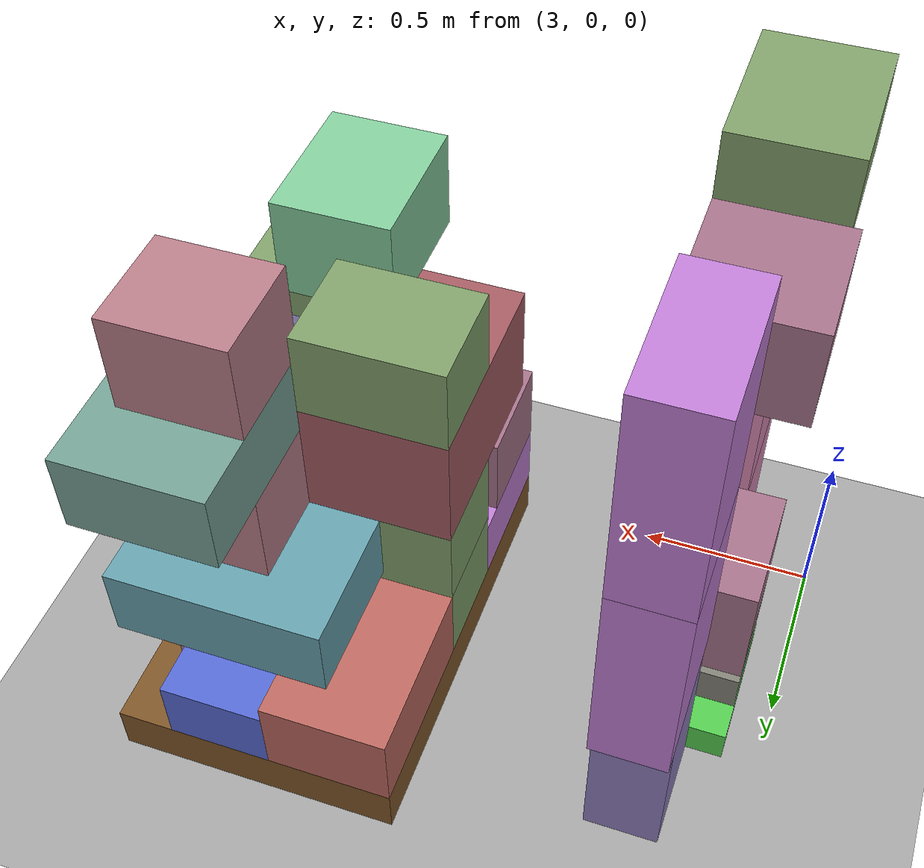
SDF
<sdf version="1.10">
 <world name="pallet_towers">
  <model name="ground_plane">
   <static>true</static>
   <link name="link">
    <collision name="collision">
     <geometry><plane><normal>0 0 1</normal><size>30 30</size></plane></geometry>
     <surface>
      <friction><ode><mu>0.55</mu><mu2>0.55</mu2></ode></friction>
      <bounce><restitution_coefficient>0</restitution_coefficient><threshold>100000</threshold></bounce>
      <contact><ode><kp>1000000</kp><kd>100</kd><max_vel>1</max_vel><min_depth>0.0005</min_depth></ode></contact>
     </surface>
    </collision>
    <visual name="visual">
     <geometry><plane><normal>0 0 1</normal><size>30 30</size></plane></geometry>
     <material><ambient>0.65 0.65 0.65 1</ambient><diffuse>0.65 0.65 0.65 1</diffuse></material>
    </visual>
   </link>
  </model>
  <model name="box_p03_0005_YOGURT_009_YOGURT">
   <static>false</static>
   <pose>3.23 0.595 0.194 0 0 0</pose>
   <link name="body">
    <inertial>
     <mass>5</mass>
     <inertia>
      <ixx>0.0675416667</ixx>
      <ixy>0</ixy>
      <ixz>0</ixz>
      <iyy>0.0323333333</iyy>
      <iyz>0</iyz>
      <izz>0.0915416667</izz>
     </inertia>
    </inertial>
    <collision name="collision">
     <geometry><box><size>0.26 0.39 0.1</size></box></geometry>
     <surface>
      <friction><ode><mu>0.55</mu><mu2>0.55</mu2></ode></friction>
      <bounce><restitution_coefficient>0</restitution_coefficient><threshold>100000</threshold></bounce>
      <contact><ode><kp>1000000</kp><kd>100</kd><max_vel>1</max_vel><min_depth>0.0005</min_depth></ode></contact>
     </surface>
    </collision>
    <visual name="visual">
     <geometry><box><size>0.26 0.39 0.1</size></box></geometry>
     <material>
      <ambient>0.329411765 0.803921569 0.31372549 1</ambient>
      <diffuse>0.329411765 0.803921569 0.31372549 1</diffuse>
      <specular>0.05 0.05 0.05 1</specular>
     </material>
    </visual>
   </link>
  </model>
  <model name="box_p03_0011_BUTTER_005_BUTTER">
   <static>false</static>
   <pose>3.22 0.58 0.409 0 0 0</pose>
   <link name="body">
    <inertial>
     <mass>10</mass>
     <inertia>
      <ixx>0.118083333</ixx>
      <ixy>0</ixy>
      <ixz>0</ixz>
      <iyy>0.0580833333</iyy>
      <iyz>0</iyz>
      <izz>0.156</izz>
     </inertia>
    </inertial>
    <collision name="collision">
     <geometry><box><size>0.24 0.36 0.11</size></box></geometry>
     <surface>
      <friction><ode><mu>0.55</mu><mu2>0.55</mu2></ode></friction>
      <bounce><restitution_coefficient>0</restitution_coefficient><threshold>100000</threshold></bounce>
      <contact><ode><kp>1000000</kp><kd>100</kd><max_vel>1</max_vel><min_depth>0.0005</min_depth></ode></contact>
     </surface>
    </collision>
    <visual name="visual">
     <geometry><box><size>0.24 0.36 0.11</size></box></geometry>
     <material>
      <ambient>0.51372549 0.509803922 0.466666667 1</ambient>
      <diffuse>0.51372549 0.509803922 0.466666667 1</diffuse>
      <specular>0.05 0.05 0.05 1</specular>
     </material>
    </visual>
   </link>
  </model>
  <model name="box_p03_0012_WINE_006_WINE">
   <static>false</static>
   <pose>3.23 0.57 0.624 0 0 0</pose>
   <link name="body">
    <inertial>
     <mass>18</mass>
     <inertia><ixx>0.327</ixx><ixy>0</ixy><ixz>0</ixz><iyy>0.255</iyy><iyz>0</iyz><izz>0.2748</izz></inertia>
    </inertial>
    <collision name="collision">
     <geometry><box><size>0.26 0.34 0.32</size></box></geometry>
     <surface>
      <friction><ode><mu>0.55</mu><mu2>0.55</mu2></ode></friction>
      <bounce><restitution_coefficient>0</restitution_coefficient><threshold>100000</threshold></bounce>
      <contact><ode><kp>1000000</kp><kd>100</kd><max_vel>1</max_vel><min_depth>0.0005</min_depth></ode></contact>
     </surface>
    </collision>
    <visual name="visual">
     <geometry><box><size>0.26 0.34 0.32</size></box></geometry>
     <material>
      <ambient>0.654901961 0.450980392 0.541176471 1</ambient>
      <diffuse>0.654901961 0.450980392 0.541176471 1</diffuse>
      <specular>0.05 0.05 0.05 1</specular>
     </material>
    </visual>
   </link>
  </model>
  <model name="box_p03_0013_POTATO_004_POTATO">
   <static>false</static>
   <pose>3.3 0.2 0.444 0 0 0</pose>
   <link name="body">
    <inertial>
     <mass>25</mass>
     <inertia>
      <ixx>1.08333333</ixx>
      <ixy>0</ixy>
      <ixz>0</ixz>
      <iyy>0.833333333</iyy>
      <iyz>0</iyz>
      <izz>0.416666667</izz>
     </inertia>
    </inertial>
    <collision name="collision">
     <geometry><box><size>0.2 0.4 0.6</size></box></geometry>
     <surface>
      <friction><ode><mu>0.55</mu><mu2>0.55</mu2></ode></friction>
      <bounce><restitution_coefficient>0</restitution_coefficient><threshold>100000</threshold></bounce>
      <contact><ode><kp>1000000</kp><kd>100</kd><max_vel>1</max_vel><min_depth>0.0005</min_depth></ode></contact>
     </surface>
    </collision>
    <visual name="visual">
     <geometry><box><size>0.2 0.4 0.6</size></box></geometry>
     <material>
      <ambient>0.854901961 0.541176471 0.71372549 1</ambient>
      <diffuse>0.854901961 0.541176471 0.71372549 1</diffuse>
      <specular>0.05 0.05 0.05 1</specular>
     </material>
    </visual>
   </link>
  </model>
  <model name="box_p03_0014_RICE_007_RICE">
   <static>false</static>
   <pose>3.3 0.94 0.364 0 0 0</pose>
   <link name="body">
    <inertial>
     <mass>20</mass>
     <inertia>
      <ixx>0.472666667</ixx>
      <ixy>0</ixy>
      <ixz>0</ixz>
      <iyy>0.389333333</iyy>
      <iyz>0</iyz>
      <izz>0.216666667</izz>
     </inertia>
    </inertial>
    <collision name="collision">
     <geometry><box><size>0.2 0.3 0.44</size></box></geometry>
     <surface>
      <friction><ode><mu>0.55</mu><mu2>0.55</mu2></ode></friction>
      <bounce><restitution_coefficient>0</restitution_coefficient><threshold>100000</threshold></bounce>
      <contact><ode><kp>1000000</kp><kd>100</kd><max_vel>1</max_vel><min_depth>0.0005</min_depth></ode></contact>
     </surface>
    </collision>
    <visual name="visual">
     <geometry><box><size>0.2 0.3 0.44</size></box></geometry>
     <material>
      <ambient>0.564705882 0.494117647 0.741176471 1</ambient>
      <diffuse>0.564705882 0.494117647 0.741176471 1</diffuse>
      <specular>0.05 0.05 0.05 1</specular>
     </material>
    </visual>
   </link>
  </model>
  <model name="box_p03_0018_POTATO_006_POTATO">
   <static>false</static>
   <pose>3.3 0.2 1.044 0 0 0</pose>
   <link name="body">
    <inertial>
     <mass>25</mass>
     <inertia>
      <ixx>1.08333333</ixx>
      <ixy>0</ixy>
      <ixz>0</ixz>
      <iyy>0.833333333</iyy>
      <iyz>0</iyz>
      <izz>0.416666667</izz>
     </inertia>
    </inertial>
    <collision name="collision">
     <geometry><box><size>0.2 0.4 0.6</size></box></geometry>
     <surface>
      <friction><ode><mu>0.55</mu><mu2>0.55</mu2></ode></friction>
      <bounce><restitution_coefficient>0</restitution_coefficient><threshold>100000</threshold></bounce>
      <contact><ode><kp>1000000</kp><kd>100</kd><max_vel>1</max_vel><min_depth>0.0005</min_depth></ode></contact>
     </surface>
    </collision>
    <visual name="visual">
     <geometry><box><size>0.2 0.4 0.6</size></box></geometry>
     <material>
      <ambient>0.854901961 0.541176471 0.71372549 1</ambient>
      <diffuse>0.854901961 0.541176471 0.71372549 1</diffuse>
      <specular>0.05 0.05 0.05 1</specular>
     </material>
    </visual>
   </link>
  </model>
  <model name="box_p03_0022_BREAD_007_BREAD">
   <static>false</static>
   <pose>3.3 0.94 0.884 0 0 0</pose>
   <link name="body">
    <inertial>
     <mass>4.5</mass>
     <inertia><ixx>0.195</ixx><ixy>0</ixy><ixz>0</ixz><iyy>0.15</iyy><iyz>0</iyz><izz>0.075</izz></inertia>
    </inertial>
    <collision name="collision">
     <geometry><box><size>0.2 0.4 0.6</size></box></geometry>
     <surface>
      <friction><ode><mu>0.55</mu><mu2>0.55</mu2></ode></friction>
      <bounce><restitution_coefficient>0</restitution_coefficient><threshold>100000</threshold></bounce>
      <contact><ode><kp>1000000</kp><kd>100</kd><max_vel>1</max_vel><min_depth>0.0005</min_depth></ode></contact>
     </surface>
    </collision>
    <visual name="visual">
     <geometry><box><size>0.2 0.4 0.6</size></box></geometry>
     <material>
      <ambient>0.756862745 0.498039216 0.839215686 1</ambient>
      <diffuse>0.756862745 0.498039216 0.839215686 1</diffuse>
      <specular>0.05 0.05 0.05 1</specular>
     </material>
    </visual>
   </link>
  </model>
  <model name="box_p03_0032_BREAD_012_BREAD">
   <static>false</static>
   <pose>3.3 0.94 1.484 0 0 0</pose>
   <link name="body">
    <inertial>
     <mass>4.5</mass>
     <inertia><ixx>0.195</ixx><ixy>0</ixy><ixz>0</ixz><iyy>0.15</iyy><iyz>0</iyz><izz>0.075</izz></inertia>
    </inertial>
    <collision name="collision">
     <geometry><box><size>0.2 0.4 0.6</size></box></geometry>
     <surface>
      <friction><ode><mu>0.55</mu><mu2>0.55</mu2></ode></friction>
      <bounce><restitution_coefficient>0</restitution_coefficient><threshold>100000</threshold></bounce>
      <contact><ode><kp>1000000</kp><kd>100</kd><max_vel>1</max_vel><min_depth>0.0005</min_depth></ode></contact>
     </surface>
    </collision>
    <visual name="visual">
     <geometry><box><size>0.2 0.4 0.6</size></box></geometry>
     <material>
      <ambient>0.756862745 0.498039216 0.839215686 1</ambient>
      <diffuse>0.756862745 0.498039216 0.839215686 1</diffuse>
      <specular>0.05 0.05 0.05 1</specular>
     </material>
    </visual>
   </link>
  </model>
  <model name="box_p03_0034_WINE_004_WINE">
   <static>false</static>
   <pose>3.24 0.57 1.534 0 0 0</pose>
   <link name="body">
    <inertial>
     <mass>18</mass>
     <inertia><ixx>0.2748</ixx><ixy>0</ixy><ixz>0</ixz><iyy>0.255</iyy><iyz>0</iyz><izz>0.327</izz></inertia>
    </inertial>
    <collision name="collision">
     <geometry><box><size>0.32 0.34 0.26</size></box></geometry>
     <surface>
      <friction><ode><mu>0.55</mu><mu2>0.55</mu2></ode></friction>
      <bounce><restitution_coefficient>0</restitution_coefficient><threshold>100000</threshold></bounce>
      <contact><ode><kp>1000000</kp><kd>100</kd><max_vel>1</max_vel><min_depth>0.0005</min_depth></ode></contact>
     </surface>
    </collision>
    <visual name="visual">
     <geometry><box><size>0.32 0.34 0.26</size></box></geometry>
     <material>
      <ambient>0.654901961 0.450980392 0.541176471 1</ambient>
      <diffuse>0.654901961 0.450980392 0.541176471 1</diffuse>
      <specular>0.05 0.05 0.05 1</specular>
     </material>
    </visual>
   </link>
  </model>
  <model name="box_p03_0035_TEA_004_TEA">
   <static>false</static>
   <pose>3.3 0.18 1.464 0 0 0</pose>
   <link name="body">
    <inertial>
     <mass>5</mass>
     <inertia>
      <ixx>0.078</ixx>
      <ixy>0</ixy>
      <ixz>0</ixz>
      <iyy>0.0406666667</iyy>
      <iyz>0</iyz>
      <izz>0.0706666667</izz>
     </inertia>
    </inertial>
    <collision name="collision">
     <geometry><box><size>0.2 0.36 0.24</size></box></geometry>
     <surface>
      <friction><ode><mu>0.55</mu><mu2>0.55</mu2></ode></friction>
      <bounce><restitution_coefficient>0</restitution_coefficient><threshold>100000</threshold></bounce>
      <contact><ode><kp>1000000</kp><kd>100</kd><max_vel>1</max_vel><min_depth>0.0005</min_depth></ode></contact>
     </surface>
    </collision>
    <visual name="visual">
     <geometry><box><size>0.2 0.36 0.24</size></box></geometry>
     <material>
      <ambient>0.478431373 0.788235294 0.388235294 1</ambient>
      <diffuse>0.478431373 0.788235294 0.388235294 1</diffuse>
      <specular>0.05 0.05 0.05 1</specular>
     </material>
    </visual>
   </link>
  </model>
  <model name="box_p03_0036_COFFEE_014_COFFEE">
   <static>false</static>
   <pose>3.25 0.2 1.709 0 0 0</pose>
   <link name="body">
    <inertial>
     <mass>13</mass>
     <inertia>
      <ixx>0.241041667</ixx>
      <ixy>0</ixy>
      <ixz>0</ixz>
      <iyy>0.165208333</iyy>
      <iyz>0</iyz>
      <izz>0.270833333</izz>
     </inertia>
    </inertial>
    <collision name="collision">
     <geometry><box><size>0.3 0.4 0.25</size></box></geometry>
     <surface>
      <friction><ode><mu>0.55</mu><mu2>0.55</mu2></ode></friction>
      <bounce><restitution_coefficient>0</restitution_coefficient><threshold>100000</threshold></bounce>
      <contact><ode><kp>1000000</kp><kd>100</kd><max_vel>1</max_vel><min_depth>0.0005</min_depth></ode></contact>
     </surface>
    </collision>
    <visual name="visual">
     <geometry><box><size>0.3 0.4 0.25</size></box></geometry>
     <material>
      <ambient>0.505882353 0.631372549 0.419607843 1</ambient>
      <diffuse>0.505882353 0.631372549 0.419607843 1</diffuse>
      <specular>0.05 0.05 0.05 1</specular>
     </material>
    </visual>
   </link>
  </model>
  <model name="pallet_04_P04">
   <static>false</static>
   <pose>4.3 0.6 0.072 0 0 0</pose>
   <link name="body">
    <inertial>
     <mass>25</mass>
     <inertia>
      <ixx>3.0432</ixx>
      <ixy>0</ixy>
      <ixz>0</ixz>
      <iyy>1.37653333</iyy>
      <iyz>0</iyz>
      <izz>4.33333333</izz>
     </inertia>
    </inertial>
    <collision name="collision">
     <geometry><box><size>0.8 1.2 0.144</size></box></geometry>
     <surface>
      <friction><ode><mu>0.55</mu><mu2>0.55</mu2></ode></friction>
      <bounce><restitution_coefficient>0</restitution_coefficient><threshold>100000</threshold></bounce>
      <contact><ode><kp>1000000</kp><kd>100</kd><max_vel>1</max_vel><min_depth>0.0005</min_depth></ode></contact>
     </surface>
    </collision>
    <visual name="visual">
     <geometry><box><size>0.8 1.2 0.144</size></box></geometry>
     <material>
      <ambient>0.5 0.34 0.16 1</ambient>
      <diffuse>0.5 0.34 0.16 1</diffuse>
      <specular>0.05 0.05 0.05 1</specular>
     </material>
    </visual>
   </link>
  </model>
  <model name="box_p04_0001_BREAD_011_BREAD">
   <static>false</static>
   <pose>4.2 0.2 0.244 0 0 0</pose>
   <link name="body">
    <inertial>
     <mass>4.5</mass>
     <inertia><ixx>0.075</ixx><ixy>0</ixy><ixz>0</ixz><iyy>0.15</iyy><iyz>0</iyz><izz>0.195</izz></inertia>
    </inertial>
    <collision name="collision">
     <geometry><box><size>0.6 0.4 0.2</size></box></geometry>
     <surface>
      <friction><ode><mu>0.55</mu><mu2>0.55</mu2></ode></friction>
      <bounce><restitution_coefficient>0</restitution_coefficient><threshold>100000</threshold></bounce>
      <contact><ode><kp>1000000</kp><kd>100</kd><max_vel>1</max_vel><min_depth>0.0005</min_depth></ode></contact>
     </surface>
    </collision>
    <visual name="visual">
     <geometry><box><size>0.6 0.4 0.2</size></box></geometry>
     <material>
      <ambient>0.756862745 0.498039216 0.839215686 1</ambient>
      <diffuse>0.756862745 0.498039216 0.839215686 1</diffuse>
      <specular>0.05 0.05 0.05 1</specular>
     </material>
    </visual>
   </link>
  </model>
  <model name="box_p04_0002_COFFEE_011_COFFEE">
   <static>false</static>
   <pose>4.1 0.55 0.269 0 0 0</pose>
   <link name="body">
    <inertial>
     <mass>13</mass>
     <inertia>
      <ixx>0.165208333</ixx>
      <ixy>0</ixy>
      <ixz>0</ixz>
      <iyy>0.241041667</iyy>
      <iyz>0</iyz>
      <izz>0.270833333</izz>
     </inertia>
    </inertial>
    <collision name="collision">
     <geometry><box><size>0.4 0.3 0.25</size></box></geometry>
     <surface>
      <friction><ode><mu>0.55</mu><mu2>0.55</mu2></ode></friction>
      <bounce><restitution_coefficient>0</restitution_coefficient><threshold>100000</threshold></bounce>
      <contact><ode><kp>1000000</kp><kd>100</kd><max_vel>1</max_vel><min_depth>0.0005</min_depth></ode></contact>
     </surface>
    </collision>
    <visual name="visual">
     <geometry><box><size>0.4 0.3 0.25</size></box></geometry>
     <material>
      <ambient>0.505882353 0.631372549 0.419607843 1</ambient>
      <diffuse>0.505882353 0.631372549 0.419607843 1</diffuse>
      <specular>0.05 0.05 0.05 1</specular>
     </material>
    </visual>
   </link>
  </model>
  <model name="box_p04_0003_YOGURT_005_YOGURT">
   <static>false</static>
   <pose>4.495 0.53 0.194 0 0 0</pose>
   <link name="body">
    <inertial>
     <mass>5</mass>
     <inertia>
      <ixx>0.0323333333</ixx>
      <ixy>0</ixy>
      <ixz>0</ixz>
      <iyy>0.0675416667</iyy>
      <iyz>0</iyz>
      <izz>0.0915416667</izz>
     </inertia>
    </inertial>
    <collision name="collision">
     <geometry><box><size>0.39 0.26 0.1</size></box></geometry>
     <surface>
      <friction><ode><mu>0.55</mu><mu2>0.55</mu2></ode></friction>
      <bounce><restitution_coefficient>0</restitution_coefficient><threshold>100000</threshold></bounce>
      <contact><ode><kp>1000000</kp><kd>100</kd><max_vel>1</max_vel><min_depth>0.0005</min_depth></ode></contact>
     </surface>
    </collision>
    <visual name="visual">
     <geometry><box><size>0.39 0.26 0.1</size></box></geometry>
     <material>
      <ambient>0.329411765 0.803921569 0.31372549 1</ambient>
      <diffuse>0.329411765 0.803921569 0.31372549 1</diffuse>
      <specular>0.05 0.05 0.05 1</specular>
     </material>
    </visual>
   </link>
  </model>
  <model name="box_p04_0004_ONION_004_ONION">
   <static>false</static>
   <pose>4.075 0.95 0.269 0 0 0</pose>
   <link name="body">
    <inertial>
     <mass>10</mass>
     <inertia>
      <ixx>0.260416667</ixx>
      <ixy>0</ixy>
      <ixz>0</ixz>
      <iyy>0.154166667</iyy>
      <iyz>0</iyz>
      <izz>0.310416667</izz>
     </inertia>
    </inertial>
    <collision name="collision">
     <geometry><box><size>0.35 0.5 0.25</size></box></geometry>
     <surface>
      <friction><ode><mu>0.55</mu><mu2>0.55</mu2></ode></friction>
      <bounce><restitution_coefficient>0</restitution_coefficient><threshold>100000</threshold></bounce>
      <contact><ode><kp>1000000</kp><kd>100</kd><max_vel>1</max_vel><min_depth>0.0005</min_depth></ode></contact>
     </surface>
    </collision>
    <visual name="visual">
     <geometry><box><size>0.35 0.5 0.25</size></box></geometry>
     <material>
      <ambient>0.741176471 0.411764706 0.376470588 1</ambient>
      <diffuse>0.741176471 0.411764706 0.376470588 1</diffuse>
      <specular>0.05 0.05 0.05 1</specular>
     </material>
    </visual>
   </link>
  </model>
  <model name="box_p04_0005_YOGURT_006_YOGURT">
   <static>false</static>
   <pose>4.495 0.53 0.294 0 0 0</pose>
   <link name="body">
    <inertial>
     <mass>5</mass>
     <inertia>
      <ixx>0.0323333333</ixx>
      <ixy>0</ixy>
      <ixz>0</ixz>
      <iyy>0.0675416667</iyy>
      <iyz>0</iyz>
      <izz>0.0915416667</izz>
     </inertia>
    </inertial>
    <collision name="collision">
     <geometry><box><size>0.39 0.26 0.1</size></box></geometry>
     <surface>
      <friction><ode><mu>0.55</mu><mu2>0.55</mu2></ode></friction>
      <bounce><restitution_coefficient>0</restitution_coefficient><threshold>100000</threshold></bounce>
      <contact><ode><kp>1000000</kp><kd>100</kd><max_vel>1</max_vel><min_depth>0.0005</min_depth></ode></contact>
     </surface>
    </collision>
    <visual name="visual">
     <geometry><box><size>0.39 0.26 0.1</size></box></geometry>
     <material>
      <ambient>0.329411765 0.803921569 0.31372549 1</ambient>
      <diffuse>0.329411765 0.803921569 0.31372549 1</diffuse>
      <specular>0.05 0.05 0.05 1</specular>
     </material>
    </visual>
   </link>
  </model>
  <model name="box_p04_0006_EGGS_007_EGGS">
   <static>false</static>
   <pose>4.465 0.81 0.284 0 0 0</pose>
   <link name="body">
    <inertial>
     <mass>18</mass>
     <inertia><ixx>0.2526</ixx><ixy>0</ixy><ixz>0</ixz><iyy>0.28095</iyy><iyz>0</iyz><izz>0.29835</izz></inertia>
    </inertial>
    <collision name="collision">
     <geometry><box><size>0.33 0.3 0.28</size></box></geometry>
     <surface>
      <friction><ode><mu>0.55</mu><mu2>0.55</mu2></ode></friction>
      <bounce><restitution_coefficient>0</restitution_coefficient><threshold>100000</threshold></bounce>
      <contact><ode><kp>1000000</kp><kd>100</kd><max_vel>1</max_vel><min_depth>0.0005</min_depth></ode></contact>
     </surface>
    </collision>
    <visual name="visual">
     <geometry><box><size>0.33 0.3 0.28</size></box></geometry>
     <material>
      <ambient>0.725490196 0.494117647 0.537254902 1</ambient>
      <diffuse>0.725490196 0.494117647 0.537254902 1</diffuse>
      <specular>0.05 0.05 0.05 1</specular>
     </material>
    </visual>
   </link>
  </model>
  <model name="box_p04_0007_BEER24_006_BEER24">
   <static>false</static>
   <pose>4.565 0.2 0.2765 0 0 0</pose>
   <link name="body">
    <inertial>
     <mass>9</mass>
     <inertia>
      <ixx>0.17266875</ixx>
      <ixy>0</ixy>
      <ixz>0</ixz>
      <iyy>0.06534375</iyy>
      <iyz>0</iyz>
      <izz>0.132675</izz>
     </inertia>
    </inertial>
    <collision name="collision">
     <geometry><box><size>0.13 0.4 0.265</size></box></geometry>
     <surface>
      <friction><ode><mu>0.55</mu><mu2>0.55</mu2></ode></friction>
      <bounce><restitution_coefficient>0</restitution_coefficient><threshold>100000</threshold></bounce>
      <contact><ode><kp>1000000</kp><kd>100</kd><max_vel>1</max_vel><min_depth>0.0005</min_depth></ode></contact>
     </surface>
    </collision>
    <visual name="visual">
     <geometry><box><size>0.13 0.4 0.265</size></box></geometry>
     <material>
      <ambient>0.741176471 0.62745098 0.737254902 1</ambient>
      <diffuse>0.741176471 0.62745098 0.737254902 1</diffuse>
      <specular>0.05 0.05 0.05 1</specular>
     </material>
    </visual>
   </link>
  </model>
  <model name="box_p04_0008_WINE_005_WINE">
   <static>false</static>
   <pose>4.07 0.16 0.474 0 0 0</pose>
   <link name="body">
    <inertial>
     <mass>18</mass>
     <inertia><ixx>0.255</ixx><ixy>0</ixy><ixz>0</ixz><iyy>0.2748</iyy><iyz>0</iyz><izz>0.327</izz></inertia>
    </inertial>
    <collision name="collision">
     <geometry><box><size>0.34 0.32 0.26</size></box></geometry>
     <surface>
      <friction><ode><mu>0.55</mu><mu2>0.55</mu2></ode></friction>
      <bounce><restitution_coefficient>0</restitution_coefficient><threshold>100000</threshold></bounce>
      <contact><ode><kp>1000000</kp><kd>100</kd><max_vel>1</max_vel><min_depth>0.0005</min_depth></ode></contact>
     </surface>
    </collision>
    <visual name="visual">
     <geometry><box><size>0.34 0.32 0.26</size></box></geometry>
     <material>
      <ambient>0.654901961 0.450980392 0.541176471 1</ambient>
      <diffuse>0.654901961 0.450980392 0.541176471 1</diffuse>
      <specular>0.05 0.05 0.05 1</specular>
     </material>
    </visual>
   </link>
  </model>
  <model name="box_p04_0009_CHOCO_003_CHOCO">
   <static>false</static>
   <pose>4.395 1.08 0.244 0 0 0</pose>
   <link name="body">
    <inertial>
     <mass>6</mass>
     <inertia><ixx>0.0488</ixx><ixy>0</ixy><ixz>0</ixz><iyy>0.06205</iyy><iyz>0</iyz><izz>0.07085</izz></inertia>
    </inertial>
    <collision name="collision">
     <geometry><box><size>0.29 0.24 0.2</size></box></geometry>
     <surface>
      <friction><ode><mu>0.55</mu><mu2>0.55</mu2></ode></friction>
      <bounce><restitution_coefficient>0</restitution_coefficient><threshold>100000</threshold></bounce>
      <contact><ode><kp>1000000</kp><kd>100</kd><max_vel>1</max_vel><min_depth>0.0005</min_depth></ode></contact>
     </surface>
    </collision>
    <visual name="visual">
     <geometry><box><size>0.29 0.24 0.2</size></box></geometry>
     <material>
      <ambient>0.337254902 0.419607843 0.835294118 1</ambient>
      <diffuse>0.337254902 0.419607843 0.835294118 1</diffuse>
      <specular>0.05 0.05 0.05 1</specular>
     </material>
    </visual>
   </link>
  </model>
  <model name="box_p04_0010_COFFEE_009_COFFEE">
   <static>false</static>
   <pose>4.1 0.55 0.519 0 0 0</pose>
   <link name="body">
    <inertial>
     <mass>13</mass>
     <inertia>
      <ixx>0.165208333</ixx>
      <ixy>0</ixy>
      <ixz>0</ixz>
      <iyy>0.241041667</iyy>
      <iyz>0</iyz>
      <izz>0.270833333</izz>
     </inertia>
    </inertial>
    <collision name="collision">
     <geometry><box><size>0.4 0.3 0.25</size></box></geometry>
     <surface>
      <friction><ode><mu>0.55</mu><mu2>0.55</mu2></ode></friction>
      <bounce><restitution_coefficient>0</restitution_coefficient><threshold>100000</threshold></bounce>
      <contact><ode><kp>1000000</kp><kd>100</kd><max_vel>1</max_vel><min_depth>0.0005</min_depth></ode></contact>
     </surface>
    </collision>
    <visual name="visual">
     <geometry><box><size>0.4 0.3 0.25</size></box></geometry>
     <material>
      <ambient>0.505882353 0.631372549 0.419607843 1</ambient>
      <diffuse>0.505882353 0.631372549 0.419607843 1</diffuse>
      <specular>0.05 0.05 0.05 1</specular>
     </material>
    </visual>
   </link>
  </model>
  <model name="box_p04_0011_DOGFOOD_003_DOGFOOD">
   <static>false</static>
   <pose>4.355 0.17 0.399 0 0 0</pose>
   <link name="body">
    <inertial>
     <mass>8</mass>
     <inertia>
      <ixx>0.0851333333</ixx>
      <ixy>0</ixy>
      <ixz>0</ixz>
      <iyy>0.0433333333</iyy>
      <iyz>0</iyz>
      <izz>0.112333333</izz>
     </inertia>
    </inertial>
    <collision name="collision">
     <geometry><box><size>0.23 0.34 0.11</size></box></geometry>
     <surface>
      <friction><ode><mu>0.55</mu><mu2>0.55</mu2></ode></friction>
      <bounce><restitution_coefficient>0</restitution_coefficient><threshold>100000</threshold></bounce>
      <contact><ode><kp>1000000</kp><kd>100</kd><max_vel>1</max_vel><min_depth>0.0005</min_depth></ode></contact>
     </surface>
    </collision>
    <visual name="visual">
     <geometry><box><size>0.23 0.34 0.11</size></box></geometry>
     <material>
      <ambient>0.498039216 0.545098039 0.607843137 1</ambient>
      <diffuse>0.498039216 0.545098039 0.607843137 1</diffuse>
      <specular>0.05 0.05 0.05 1</specular>
     </material>
    </visual>
   </link>
  </model>
  <model name="box_p04_0012_TEA_003_TEA">
   <static>false</static>
   <pose>4.48 0.52 0.444 0 0 0</pose>
   <link name="body">
    <inertial>
     <mass>5</mass>
     <inertia>
      <ixx>0.0406666667</ixx>
      <ixy>0</ixy>
      <ixz>0</ixz>
      <iyy>0.0706666667</iyy>
      <iyz>0</iyz>
      <izz>0.078</izz>
     </inertia>
    </inertial>
    <collision name="collision">
     <geometry><box><size>0.36 0.24 0.2</size></box></geometry>
     <surface>
      <friction><ode><mu>0.55</mu><mu2>0.55</mu2></ode></friction>
      <bounce><restitution_coefficient>0</restitution_coefficient><threshold>100000</threshold></bounce>
      <contact><ode><kp>1000000</kp><kd>100</kd><max_vel>1</max_vel><min_depth>0.0005</min_depth></ode></contact>
     </surface>
    </collision>
    <visual name="visual">
     <geometry><box><size>0.36 0.24 0.2</size></box></geometry>
     <material>
      <ambient>0.478431373 0.788235294 0.388235294 1</ambient>
      <diffuse>0.478431373 0.788235294 0.388235294 1</diffuse>
      <specular>0.05 0.05 0.05 1</specular>
     </material>
    </visual>
   </link>
  </model>
  <model name="box_p04_0013_APPLES_005_APPLES">
   <static>false</static>
   <pose>4.4 0.9 0.534 0 0 0</pose>
   <link name="body">
    <inertial>
     <mass>12</mass>
     <inertia><ixx>0.2084</ixx><ixy>0</ixy><ixz>0</ixz><iyy>0.4084</iyy><iyz>0</iyz><izz>0.52</izz></inertia>
    </inertial>
    <collision name="collision">
     <geometry><box><size>0.6 0.4 0.22</size></box></geometry>
     <surface>
      <friction><ode><mu>0.55</mu><mu2>0.55</mu2></ode></friction>
      <bounce><restitution_coefficient>0</restitution_coefficient><threshold>100000</threshold></bounce>
      <contact><ode><kp>1000000</kp><kd>100</kd><max_vel>1</max_vel><min_depth>0.0005</min_depth></ode></contact>
     </surface>
    </collision>
    <visual name="visual">
     <geometry><box><size>0.6 0.4 0.22</size></box></geometry>
     <material>
      <ambient>0.4 0.635294118 0.68627451 1</ambient>
      <diffuse>0.4 0.635294118 0.68627451 1</diffuse>
      <specular>0.05 0.05 0.05 1</specular>
     </material>
    </visual>
   </link>
  </model>
  <model name="box_p04_0014_DOGFOOD_002_DOGFOOD">
   <static>false</static>
   <pose>4.355 0.17 0.509 0 0 0</pose>
   <link name="body">
    <inertial>
     <mass>8</mass>
     <inertia>
      <ixx>0.0851333333</ixx>
      <ixy>0</ixy>
      <ixz>0</ixz>
      <iyy>0.0433333333</iyy>
      <iyz>0</iyz>
      <izz>0.112333333</izz>
     </inertia>
    </inertial>
    <collision name="collision">
     <geometry><box><size>0.23 0.34 0.11</size></box></geometry>
     <surface>
      <friction><ode><mu>0.55</mu><mu2>0.55</mu2></ode></friction>
      <bounce><restitution_coefficient>0</restitution_coefficient><threshold>100000</threshold></bounce>
      <contact><ode><kp>1000000</kp><kd>100</kd><max_vel>1</max_vel><min_depth>0.0005</min_depth></ode></contact>
     </surface>
    </collision>
    <visual name="visual">
     <geometry><box><size>0.23 0.34 0.11</size></box></geometry>
     <material>
      <ambient>0.498039216 0.545098039 0.607843137 1</ambient>
      <diffuse>0.498039216 0.545098039 0.607843137 1</diffuse>
      <specular>0.05 0.05 0.05 1</specular>
     </material>
    </visual>
   </link>
  </model>
  <model name="box_p04_0015_DETERG_004_DETERG">
   <static>false</static>
   <pose>4.5 0.5 0.684 0 0 0</pose>
   <link name="body">
    <inertial>
     <mass>7</mass>
     <inertia>
      <ixx>0.105466667</ixx>
      <ixy>0</ixy>
      <ixz>0</ixz>
      <iyy>0.139066667</iyy>
      <iyz>0</iyz>
      <izz>0.153066667</izz>
     </inertia>
    </inertial>
    <collision name="collision">
     <geometry><box><size>0.4 0.32 0.28</size></box></geometry>
     <surface>
      <friction><ode><mu>0.55</mu><mu2>0.55</mu2></ode></friction>
      <bounce><restitution_coefficient>0</restitution_coefficient><threshold>100000</threshold></bounce>
      <contact><ode><kp>1000000</kp><kd>100</kd><max_vel>1</max_vel><min_depth>0.0005</min_depth></ode></contact>
     </surface>
    </collision>
    <visual name="visual">
     <geometry><box><size>0.4 0.32 0.28</size></box></geometry>
     <material>
      <ambient>0.517647059 0.803921569 0.615686275 1</ambient>
      <diffuse>0.517647059 0.803921569 0.615686275 1</diffuse>
      <specular>0.05 0.05 0.05 1</specular>
     </material>
    </visual>
   </link>
  </model>
  <model name="box_p04_0016_CHIPS_006_CHIPS">
   <static>false</static>
   <pose>4.1 0.4 0.819 0 0 0</pose>
   <link name="body">
    <inertial>
     <mass>3.5</mass>
     <inertia>
      <ixx>0.140729167</ixx>
      <ixy>0</ixy>
      <ixz>0</ixz>
      <iyy>0.0823958333</iyy>
      <iyz>0</iyz>
      <izz>0.151666667</izz>
     </inertia>
    </inertial>
    <collision name="collision">
     <geometry><box><size>0.4 0.6 0.35</size></box></geometry>
     <surface>
      <friction><ode><mu>0.55</mu><mu2>0.55</mu2></ode></friction>
      <bounce><restitution_coefficient>0</restitution_coefficient><threshold>100000</threshold></bounce>
      <contact><ode><kp>1000000</kp><kd>100</kd><max_vel>1</max_vel><min_depth>0.0005</min_depth></ode></contact>
     </surface>
    </collision>
    <visual name="visual">
     <geometry><box><size>0.4 0.6 0.35</size></box></geometry>
     <material>
      <ambient>0.643137255 0.360784314 0.388235294 1</ambient>
      <diffuse>0.643137255 0.360784314 0.388235294 1</diffuse>
      <specular>0.05 0.05 0.05 1</specular>
     </material>
    </visual>
   </link>
  </model>
  <model name="box_p04_0017_EGGS_006_EGGS">
   <static>false</static>
   <pose>4.45 0.165 0.704 0 0 0</pose>
   <link name="body">
    <inertial>
     <mass>18</mass>
     <inertia><ixx>0.28095</ixx><ixy>0</ixy><ixz>0</ixz><iyy>0.2526</iyy><iyz>0</iyz><izz>0.29835</izz></inertia>
    </inertial>
    <collision name="collision">
     <geometry><box><size>0.3 0.33 0.28</size></box></geometry>
     <surface>
      <friction><ode><mu>0.55</mu><mu2>0.55</mu2></ode></friction>
      <bounce><restitution_coefficient>0</restitution_coefficient><threshold>100000</threshold></bounce>
      <contact><ode><kp>1000000</kp><kd>100</kd><max_vel>1</max_vel><min_depth>0.0005</min_depth></ode></contact>
     </surface>
    </collision>
    <visual name="visual">
     <geometry><box><size>0.3 0.33 0.28</size></box></geometry>
     <material>
      <ambient>0.725490196 0.494117647 0.537254902 1</ambient>
      <diffuse>0.725490196 0.494117647 0.537254902 1</diffuse>
      <specular>0.05 0.05 0.05 1</specular>
     </material>
    </visual>
   </link>
  </model>
  <model name="box_p04_0018_EGGS_008_EGGS">
   <static>false</static>
   <pose>4.465 0.81 0.784 0 0 0</pose>
   <link name="body">
    <inertial>
     <mass>18</mass>
     <inertia><ixx>0.2526</ixx><ixy>0</ixy><ixz>0</ixz><iyy>0.28095</iyy><iyz>0</iyz><izz>0.29835</izz></inertia>
    </inertial>
    <collision name="collision">
     <geometry><box><size>0.33 0.3 0.28</size></box></geometry>
     <surface>
      <friction><ode><mu>0.55</mu><mu2>0.55</mu2></ode></friction>
      <bounce><restitution_coefficient>0</restitution_coefficient><threshold>100000</threshold></bounce>
      <contact><ode><kp>1000000</kp><kd>100</kd><max_vel>1</max_vel><min_depth>0.0005</min_depth></ode></contact>
     </surface>
    </collision>
    <visual name="visual">
     <geometry><box><size>0.33 0.3 0.28</size></box></geometry>
     <material>
      <ambient>0.725490196 0.494117647 0.537254902 1</ambient>
      <diffuse>0.725490196 0.494117647 0.537254902 1</diffuse>
      <specular>0.05 0.05 0.05 1</specular>
     </material>
    </visual>
   </link>
  </model>
  <model name="box_p04_0019_SUGAR_007_SUGAR">
   <static>false</static>
   <pose>4.455 0.545 0.934 0 0 0</pose>
   <link name="body">
    <inertial>
     <mass>10</mass>
     <inertia>
      <ixx>0.0844166667</ixx>
      <ixy>0</ixy>
      <ixz>0</ixz>
      <iyy>0.120416667</iyy>
      <iyz>0</iyz>
      <izz>0.124166667</izz>
     </inertia>
    </inertial>
    <collision name="collision">
     <geometry><box><size>0.31 0.23 0.22</size></box></geometry>
     <surface>
      <friction><ode><mu>0.55</mu><mu2>0.55</mu2></ode></friction>
      <bounce><restitution_coefficient>0</restitution_coefficient><threshold>100000</threshold></bounce>
      <contact><ode><kp>1000000</kp><kd>100</kd><max_vel>1</max_vel><min_depth>0.0005</min_depth></ode></contact>
     </surface>
    </collision>
    <visual name="visual">
     <geometry><box><size>0.31 0.23 0.22</size></box></geometry>
     <material>
      <ambient>0.419607843 0.392156863 0.564705882 1</ambient>
      <diffuse>0.419607843 0.392156863 0.564705882 1</diffuse>
      <specular>0.05 0.05 0.05 1</specular>
     </material>
    </visual>
   </link>
  </model>
  <model name="box_p04_0020_BANANA_004_BANANA">
   <static>false</static>
   <pose>4.5 0.91 1.039 0 0 0</pose>
   <link name="body">
    <inertial>
     <mass>18</mass>
     <inertia><ixx>0.45435</ixx><ixy>0</ixy><ixz>0</ixz><iyy>0.31935</iyy><iyz>0</iyz><izz>0.615</izz></inertia>
    </inertial>
    <collision name="collision">
     <geometry><box><size>0.4 0.5 0.23</size></box></geometry>
     <surface>
      <friction><ode><mu>0.55</mu><mu2>0.55</mu2></ode></friction>
      <bounce><restitution_coefficient>0</restitution_coefficient><threshold>100000</threshold></bounce>
      <contact><ode><kp>1000000</kp><kd>100</kd><max_vel>1</max_vel><min_depth>0.0005</min_depth></ode></contact>
     </surface>
    </collision>
    <visual name="visual">
     <geometry><box><size>0.4 0.5 0.23</size></box></geometry>
     <material>
      <ambient>0.462745098 0.635294118 0.584313725 1</ambient>
      <diffuse>0.462745098 0.635294118 0.584313725 1</diffuse>
      <specular>0.05 0.05 0.05 1</specular>
     </material>
    </visual>
   </link>
  </model>
  <model name="box_p04_0021_COFFEE_008_COFFEE">
   <static>false</static>
   <pose>4.45 0.2 0.969 0 0 0</pose>
   <link name="body">
    <inertial>
     <mass>13</mass>
     <inertia>
      <ixx>0.241041667</ixx>
      <ixy>0</ixy>
      <ixz>0</ixz>
      <iyy>0.165208333</iyy>
      <iyz>0</iyz>
      <izz>0.270833333</izz>
     </inertia>
    </inertial>
    <collision name="collision">
     <geometry><box><size>0.3 0.4 0.25</size></box></geometry>
     <surface>
      <friction><ode><mu>0.55</mu><mu2>0.55</mu2></ode></friction>
      <bounce><restitution_coefficient>0</restitution_coefficient><threshold>100000</threshold></bounce>
      <contact><ode><kp>1000000</kp><kd>100</kd><max_vel>1</max_vel><min_depth>0.0005</min_depth></ode></contact>
     </surface>
    </collision>
    <visual name="visual">
     <geometry><box><size>0.3 0.4 0.25</size></box></geometry>
     <material>
      <ambient>0.505882353 0.631372549 0.419607843 1</ambient>
      <diffuse>0.505882353 0.631372549 0.419607843 1</diffuse>
      <specular>0.05 0.05 0.05 1</specular>
     </material>
    </visual>
   </link>
  </model>
  <model name="box_p04_0022_COFFEE_012_COFFEE">
   <static>false</static>
   <pose>4.1 0.55 1.119 0 0 0</pose>
   <link name="body">
    <inertial>
     <mass>13</mass>
     <inertia>
      <ixx>0.165208333</ixx>
      <ixy>0</ixy>
      <ixz>0</ixz>
      <iyy>0.241041667</iyy>
      <iyz>0</iyz>
      <izz>0.270833333</izz>
     </inertia>
    </inertial>
    <collision name="collision">
     <geometry><box><size>0.4 0.3 0.25</size></box></geometry>
     <surface>
      <friction><ode><mu>0.55</mu><mu2>0.55</mu2></ode></friction>
      <bounce><restitution_coefficient>0</restitution_coefficient><threshold>100000</threshold></bounce>
      <contact><ode><kp>1000000</kp><kd>100</kd><max_vel>1</max_vel><min_depth>0.0005</min_depth></ode></contact>
     </surface>
    </collision>
    <visual name="visual">
     <geometry><box><size>0.4 0.3 0.25</size></box></geometry>
     <material>
      <ambient>0.505882353 0.631372549 0.419607843 1</ambient>
      <diffuse>0.505882353 0.631372549 0.419607843 1</diffuse>
      <specular>0.05 0.05 0.05 1</specular>
     </material>
    </visual>
   </link>
  </model>
  <model name="box_p04_0023_DETERG_003_DETERG">
   <static>false</static>
   <pose>4.31 0.2 1.234 0 0 0</pose>
   <link name="body">
    <inertial>
     <mass>7</mass>
     <inertia>
      <ixx>0.139066667</ixx>
      <ixy>0</ixy>
      <ixz>0</ixz>
      <iyy>0.105466667</iyy>
      <iyz>0</iyz>
      <izz>0.153066667</izz>
     </inertia>
    </inertial>
    <collision name="collision">
     <geometry><box><size>0.32 0.4 0.28</size></box></geometry>
     <surface>
      <friction><ode><mu>0.55</mu><mu2>0.55</mu2></ode></friction>
      <bounce><restitution_coefficient>0</restitution_coefficient><threshold>100000</threshold></bounce>
      <contact><ode><kp>1000000</kp><kd>100</kd><max_vel>1</max_vel><min_depth>0.0005</min_depth></ode></contact>
     </surface>
    </collision>
    <visual name="visual">
     <geometry><box><size>0.32 0.4 0.28</size></box></geometry>
     <material>
      <ambient>0.517647059 0.803921569 0.615686275 1</ambient>
      <diffuse>0.517647059 0.803921569 0.615686275 1</diffuse>
      <specular>0.05 0.05 0.05 1</specular>
     </material>
    </visual>
   </link>
  </model>
  <model name="box_p04_0024_EGGS_009_EGGS">
   <static>false</static>
   <pose>4.465 0.81 1.294 0 0 0</pose>
   <link name="body">
    <inertial>
     <mass>18</mass>
     <inertia><ixx>0.2526</ixx><ixy>0</ixy><ixz>0</ixz><iyy>0.28095</iyy><iyz>0</iyz><izz>0.29835</izz></inertia>
    </inertial>
    <collision name="collision">
     <geometry><box><size>0.33 0.3 0.28</size></box></geometry>
     <surface>
      <friction><ode><mu>0.55</mu><mu2>0.55</mu2></ode></friction>
      <bounce><restitution_coefficient>0</restitution_coefficient><threshold>100000</threshold></bounce>
      <contact><ode><kp>1000000</kp><kd>100</kd><max_vel>1</max_vel><min_depth>0.0005</min_depth></ode></contact>
     </surface>
    </collision>
    <visual name="visual">
     <geometry><box><size>0.33 0.3 0.28</size></box></geometry>
     <material>
      <ambient>0.725490196 0.494117647 0.537254902 1</ambient>
      <diffuse>0.725490196 0.494117647 0.537254902 1</diffuse>
      <specular>0.05 0.05 0.05 1</specular>
     </material>
    </visual>
   </link>
  </model>
 </world>
</sdf>
